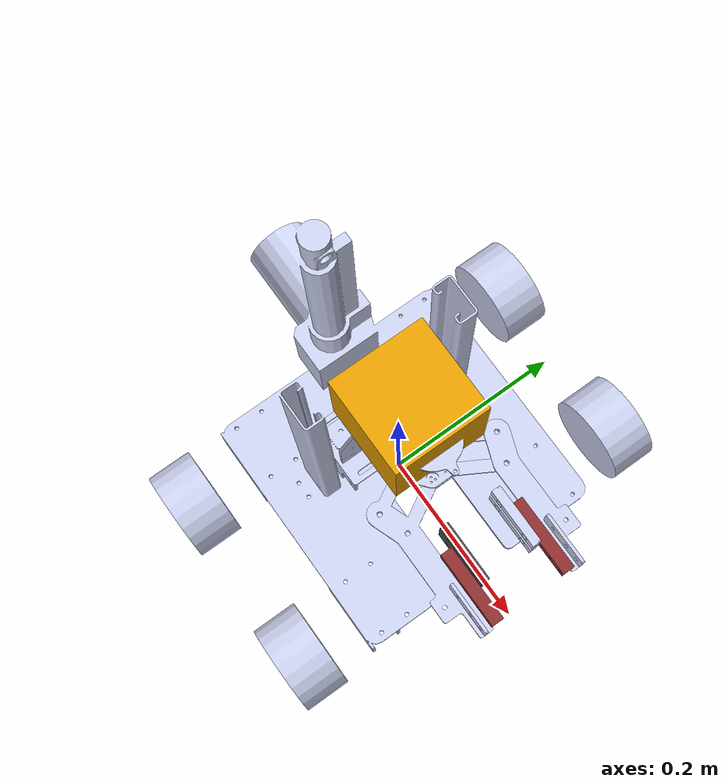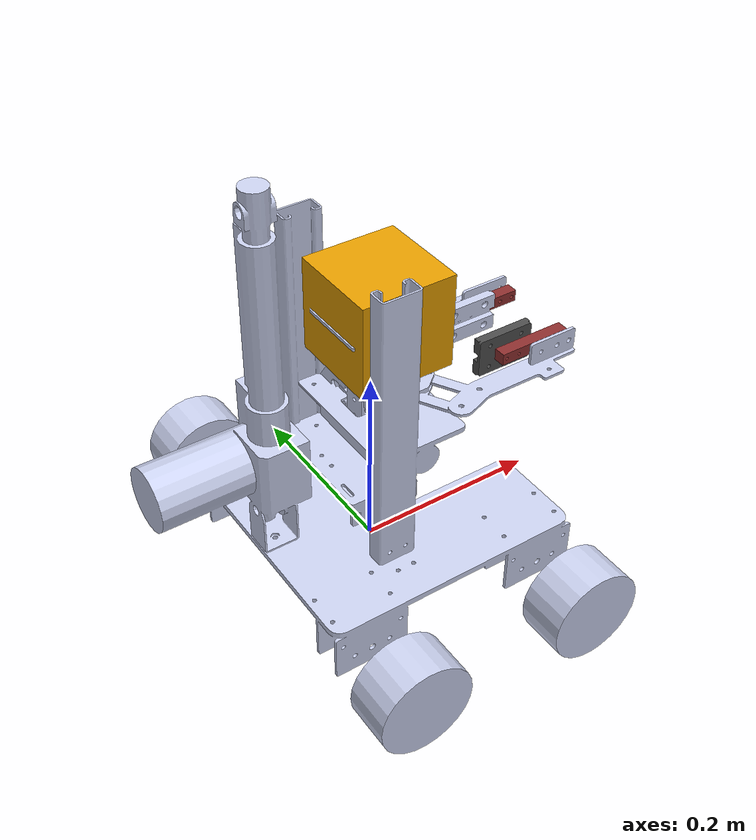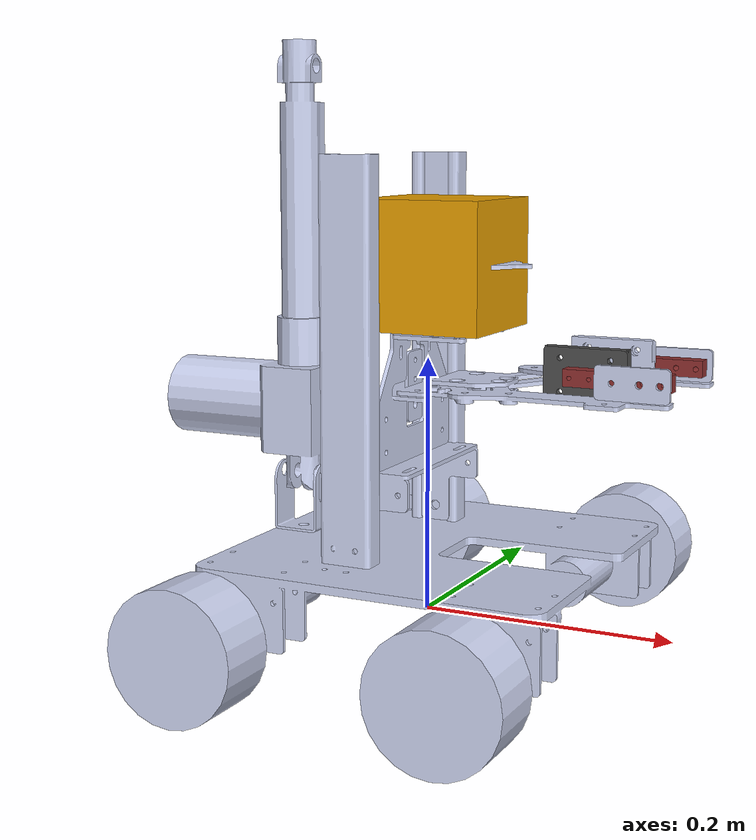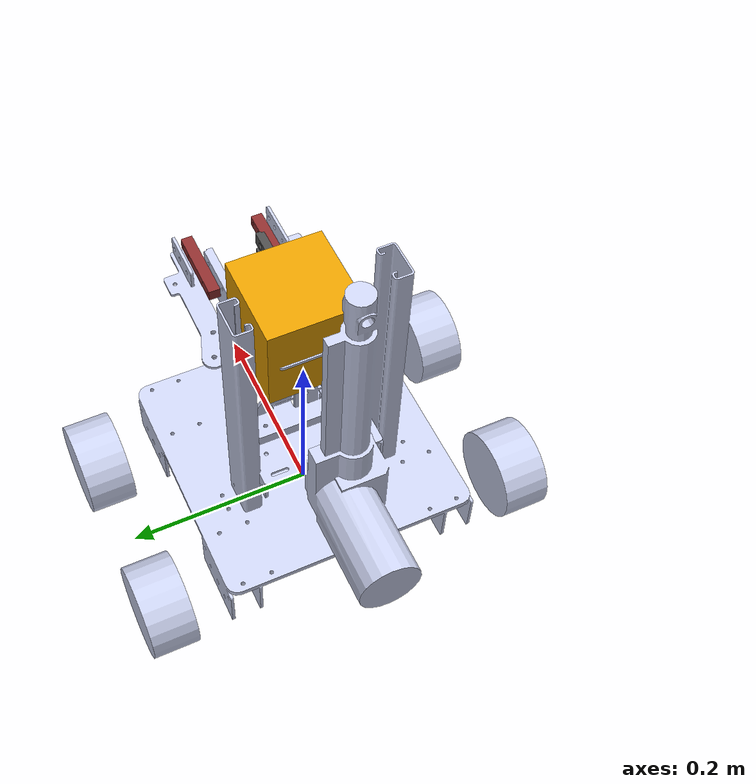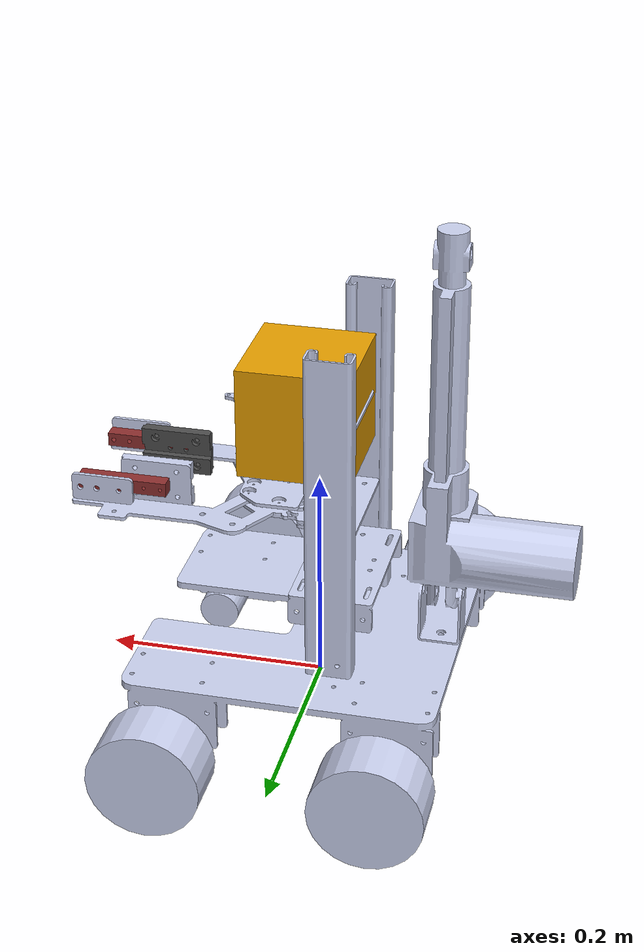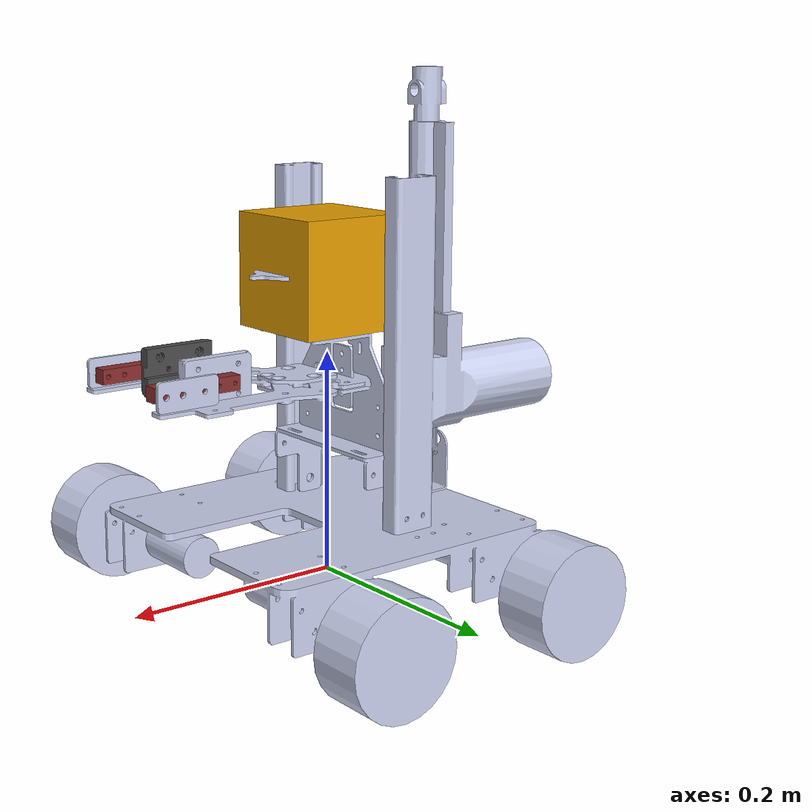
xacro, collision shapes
<?xml version="1.0"?>
<robot xmlns:xacro="http://ros.org/wiki/xacro" name="swole_7">

  <xacro:property name="PI" value="3.1415926535897931" />

  <!-- Wheels -->
  <xacro:property name="wheel_radius" value="0.05" />
  <xacro:property name="wheel_height" value="0.05" />
  <xacro:property name="wheel_mass" value="0.4" /> <!-- in kg-->

<xacro:include filename="$(find swole_7)/urdf/base/swole_base.urdf.xacro" />

	<!-- BASE FOOTPRINT -->

      <link name="base_footprint">
		  <visual>
			  <origin xyz="0 0 0.05" rpy="0 0 0" />
			  <geometry>
				 <box size="0.001 0.001 0.0001" />
			  </geometry>
        <material name="darkgrey">
         <color rgba="0.1 0.1 0.1 1"/>
       </material>
		  </visual>
		</link>

		<joint name="base_footprint_joint" type="fixed">
		  <origin xyz="0 0 ${wheel_radius}" rpy="0 0 0" />
      <!-- ${wheel_radius} property must be defined inside wheel description -->
		  <parent link="base_footprint"/>
		  <child link="base_link" />
		</joint>

    <link
    name="base_link">
    <inertial>
      <origin
        xyz="-0.0148176230048584 0.00401001080732938 0.0686503041268495"
        rpy="0 0 0" />
     <mass
        value="0.43823834058655" />
      <inertia
        ixx="0.00314976311839575"
        ixy="-9.54850998275818E-19"
        ixz="-8.87078769442381E-22"
        iyy="0.00277373372724309"
        iyz="-5.06082384233403E-22"
        izz="0.00592055170139079" />
    </inertial>
    <visual>
      <origin
        xyz="0 0 0"
        rpy="0 0 0" />
      <geometry>
        <mesh
          filename="package://swole_7/meshes/base_link.STL" />
      </geometry>
      <material
        name="">
        <color
          rgba="0.792156862745098 0.819607843137255 0.933333333333333 1" />
      </material>
    </visual>
    <collision>
      <origin
        xyz="0 0 0"
        rpy="0 0 0" />
      <geometry>
        <mesh
          filename="package://swole_7/meshes/base_link.STL" />
      </geometry>
    </collision>
  </link>
  <link
    name="front_right_wheel">
    <inertial>
      <origin
        xyz="1.4481E-11 3.6689E-05 5.3453E-11"
        rpy="0 0 0" />
      <mass
        value="0.4" />
      <inertia
        ixx="5.541E-05"
        ixy="-4.7628E-15"
        ixz="-4.7607E-14"
        iyy="6.7546E-05"
        iyz="-3.3652E-14"
        izz="5.541E-05" />
    </inertial>
    <visual>
      <origin
        xyz="0 0 0"
        rpy="0 0 0" />
      <geometry>
        <mesh
          filename="package://swole_7/meshes/omni_wheel_1.dae" scale="0.4 0.4 0.4"/>
      </geometry>
      <material
        name="">
        <color
          rgba="0.79216 0.81961 0.93333 1" />
      </material>
    </visual>
    <collision>
      <origin
        xyz="0 0 0"
        rpy="1.57 0 0" />
        <geometry>
					<cylinder length="0.05" radius="0.05" />
        </geometry>
    </collision>
  </link>
  <joint
    name="front_right_wheel_joint"
    type="continuous">
    <origin
      xyz="0.10879 -0.20416 -0.035575"
      rpy="0 0 0" />
    <parent
      link="base_link" />
    <child
      link="front_right_wheel" />
    <axis
      xyz="0 1 0" />
     <limit effort="100" velocity="100"/>
    <joint_properties damping="0.0" friction="0.0"/>
  </joint>
  <link
    name="front_left_wheel">
    <inertial>
      <origin
        xyz="1.7206E-11 -6.0979E-12 4.367E-11"
        rpy="0 0 0" />
      <mass
        value="0.4" />
      <inertia
        ixx="5.541E-05"
        ixy="-1.8289E-14"
        ixz="1.6534E-13"
        iyy="6.7546E-05"
        iyz="4.9936E-14"
        izz="5.541E-05" />
    </inertial>
    <visual>
      <origin
        xyz="0 0 0"
        rpy="0 0 0" />
      <geometry>
        <mesh
          filename="package://swole_7/meshes/omni_wheel_2.dae" scale="0.4 0.4 0.4"/>
      </geometry>
      <material
        name="">
        <color
          rgba="0.79216 0.81961 0.93333 1" />
      </material>
    </visual>
    <collision>
      <origin
        xyz="0 0 0"
        rpy="1.57 0 0" />
        <geometry>
					<cylinder length="0.05" radius="0.05" />
        </geometry>
    </collision>
  </link>
  <joint
    name="front_left_wheel_joint"
    type="continuous">
    <origin
      xyz="0.099888 0.20438 -0.035575"
      rpy="0 0 0" />
    <parent
      link="base_link" />
    <child
      link="front_left_wheel" />
    <axis
      xyz="0 1 0" />
    <limit effort="100" velocity="100"/>
    <joint_properties damping="0.0" friction="0.0"/>
  </joint>
  <link
    name="rear_left_wheel">
    <inertial>
      <origin
        xyz="-1.8869E-11 -7.9625E-12 -1.3747E-12"
        rpy="0 0 0" />
      <mass
        value="0.4" />
      <inertia
        ixx="5.541E-05"
        ixy="1.182E-14"
        ixz="-1.164E-13"
        iyy="6.7546E-05"
        iyz="2.6018E-14"
        izz="5.541E-05" />
    </inertial>
    <visual>
      <origin
        xyz="0 0 0"
        rpy="0 0 0" />
      <geometry>
        <mesh
          filename="package://swole_7/meshes/omni_wheel_2.dae" scale="0.4 0.4 0.4"/>
      </geometry>
      <material
        name="">
        <color
          rgba="0.79216 0.81961 0.93333 1" />
      </material>
    </visual>
    <collision>
      <origin
        xyz="0 0 0"
        rpy="1.57 0 0" />
        <geometry>
					<cylinder length="0.05" radius="0.05" />
        </geometry>
    </collision>
  </link>
  <joint
    name="rear_left_wheel_joint"
    type="continuous">
    <origin
      xyz="-0.091212 0.20438 -0.035575"
      rpy="0 0 0" />
    <parent
      link="base_link" />
    <child
      link="rear_left_wheel" />
    <axis
      xyz="0 1 0" />
  </joint>
  <link
    name="rear_right_wheel">
    <inertial>
      <origin
        xyz="-1.4481E-11 3.6689E-05 -5.3453E-11"
        rpy="0 0 0" />
      <mass
        value="0.4" />
      <inertia
        ixx="5.541E-05"
        ixy="4.7618E-15"
        ixz="-4.7607E-14"
        iyy="6.7546E-05"
        iyz="3.3654E-14"
        izz="5.541E-05" />
    </inertial>
    <visual>
      <origin
        xyz="0 0 0"
        rpy="0 0 0" />
      <geometry>
        <mesh
          filename="package://swole_7/meshes/omni_wheel_1.dae" scale="0.4 0.4 0.4"/>
      </geometry>
      <material
        name="">
        <color
          rgba="0.79216 0.81961 0.93333 1" />
      </material>
    </visual>
    <collision>
      <origin
        xyz="0 0 0"
        rpy="1.57 0 0" />
        <geometry>
					<cylinder length="0.05" radius="0.05" />
        </geometry>
    </collision>
  </link>
  <joint
    name="rear_right_wheel_joint"
    type="continuous">
    <origin
      xyz="-0.090543 -0.20416 -0.035575"
      rpy="0 0 0" />
    <parent
      link="base_link" />
    <child
      link="rear_right_wheel" />
    <axis
      xyz="0 1 0" />
  </joint>
  <link
    name="gripper_lifter">
    <inertial>
      <origin
        xyz="-0.0249741085115004 0.00401001080732938 0.0686503041268495"
        rpy="0 0 0" />
      <mass
        value="0.0172" />
      <inertia
        ixx="0.00021296"
        ixy="-1.3863E-08"
        ixz="-1.1287E-14"
        iyy="0.00017198"
        iyz="-1.0274E-15"
        izz="0.00020319" />
    </inertial>
    <visual>
      <origin
        xyz="0 0 0"
        rpy="0 0 0" />
      <geometry>
        <mesh
          filename="package://swole_7/meshes/gripper_lifter.STL" />
      </geometry>
      <material
        name="">
        <color
          rgba="0.79216 0.81961 0.93333 1" />
      </material>
    </visual>
    <collision>
      <origin
        xyz="0 0 0"
        rpy="0 0 0" />
      <geometry>
        <mesh
          filename="package://swole_7/meshes/gripper_lifter.STL" />
      </geometry>
    </collision>
  </link>
  <joint
    name="gripper_lifter_joint"
    type="prismatic">
    <origin
      xyz="-0.0249741085115004 0.00401001080732938 0.0686503041268495"
      rpy="0 0 0" />
    <parent
      link="base_link" />
    <child
      link="gripper_lifter" />
    <axis
      xyz="0 0 1" />
      <!-- stroke length 0.1524 m -->
    <limit velocity="1.0" effort="10.0" lower="0" upper="${0.0686503041268495 + 0.2524}"/>
    <dynamics friction="1" damping="1" />
  </joint>
  <link
    name="lidar_plate">
    <inertial>
      <origin
        xyz="0 -2.7756E-17 -5.5511E-17"
        rpy="0 0 0" />
      <mass
        value="0.00000019609" />
      <inertia
        ixx="6.9293E-06"
        ixy="-1.434E-21"
        ixz="-7.3447E-22"
        iyy="2.3202E-05"
        iyz="3.4914E-23"
        izz="3.0098E-05" />
    </inertial>
    <visual>
      <origin
        xyz="0 0 0"
        rpy="0 0 0" />
      <geometry>
        <mesh
          filename="package://swole_7/meshes/lidar_plate.STL" />
      </geometry>
      <material
        name="">
        <color
          rgba="0.79216 0.81961 0.93333 1" />
      </material>
    </visual>
    <collision>
      <origin
        xyz="0 0 0"
        rpy="0 0 0" />
      <geometry>
        <mesh
          filename="package://swole_7/meshes/lidar_plate.STL" />
      </geometry>
    </collision>
  </link>
  <joint
    name="lidar_plate_joint"
    type="fixed">
    <origin
      xyz="0.035612 0 0.15559"
      rpy="0 0 0" />
    <parent
      link="gripper_lifter" />
    <child
      link="lidar_plate" />
    <axis
      xyz="0 0 1" />
  </joint>

  <!-- Lidar -->
  <joint name="lidar_joint" type="fixed">
    <axis xyz="0 1 0" />
    <origin xyz="0 0 0" rpy="0 0 0"/>
    <parent link="lidar_plate"/>
    <child link="lidar"/>
  </joint>

  <!-- Hokuyo Laser -->
  <link name="lidar">
    <collision>
      <origin xyz="0 0 0" rpy="0 0 0"/>
      <geometry>
    <box size="0.1 0.1 0.1"/>
      </geometry>
    </collision>
    <visual>
      <origin xyz="0.01 0 0.03" rpy="0 0 0"/>
        <geometry>
					<cylinder length="0.04" radius="0.06" />
        </geometry>
    </visual>
    <inertial>
      <mass value="1e-5" />
      <origin xyz="0 0 0" rpy="0 0 0"/>
      <inertia ixx="1e-6" ixy="0" ixz="0" iyy="1e-6" iyz="0" izz="1e-6" />
    </inertial>
  </link>
  <link
    name="finger_right">
    <inertial>
      <origin
        xyz="-5.5511E-17 1.3878E-17 5.5511E-17"
        rpy="0 0 0" />
      <mass
        value="0.0041334" />
      <inertia
        ixx="2.2294E-07"
        ixy="-1.2445E-24"
        ixz="1.0627E-22"
        iyy="1.2703E-06"
        iyz="-2.8075E-24"
        izz="1.0543E-06" />
    </inertial>
    <visual>
      <origin
        xyz="0 0 0"
        rpy="0 0 0" />
      <geometry>
        <mesh
          filename="package://swole_7/meshes/finger_right.STL" />
      </geometry>
      <material
        name="">
        <color
          rgba="0.79216 0.81961 0.93333 1" />
      </material>
    </visual>
    <collision>
      <origin
        xyz="0 0 0"
        rpy="0 0 0" />
      <geometry>
        <mesh
          filename="package://swole_7/meshes/finger_right.STL" />
      </geometry>
    </collision>
  </link>
  <joint
    name="finger_right_joint"
    type="prismatic">
    <origin
      xyz="0.2055 -0.054841 0.080876"
      rpy="0 0 0" />
    <parent
      link="gripper_lifter" />
    <child
      link="finger_right" />
    <axis
      xyz="0 0 1" />
    <limit
      lower="0"
      upper="0"
      effort="0"
      velocity="0" />
  </joint>
  <link
    name="load_cell_right">
    <inertial>
      <origin
        xyz="0 -2.7756E-17 -2.7756E-17"
        rpy="0 0 0" />
      <mass
        value="0.012334" />
      <inertia
        ixx="3.3867E-07"
        ixy="-4.5654E-20"
        ixz="-1.326E-21"
        iyy="6.5905E-06"
        iyz="3.1041E-23"
        izz="6.5834E-06" />
    </inertial>
    <visual>
      <origin
        xyz="0 0 0"
        rpy="0 0 0" />
      <geometry>
        <mesh
          filename="package://swole_7/meshes/load_cell_right.STL" />
      </geometry>
      <material
        name="">
        <color
          rgba="0.54902 0.18039 0.18039 1" />
      </material>
    </visual>
    <collision>
      <origin
        xyz="0 0 0"
        rpy="0 0 0" />
      <geometry>
        <mesh
          filename="package://swole_7/meshes/load_cell_right.STL" />
      </geometry>
    </collision>
  </link>
  <joint
    name="load_cell_right_joint"
    type="fixed">
    <origin
      xyz="-0.01482 0.014288 0"
      rpy="0 0 0" />
    <parent
      link="finger_right" />
    <child
      link="load_cell_right" />
    <axis
      xyz="0 0 1" />
  </joint>
  <link
    name="contact_right">
    <inertial>
      <origin
        xyz="-1.1102E-16 0.0028274 -2.7756E-17"
        rpy="0 0 0" />
      <mass
        value="0.019736" />
      <inertia
        ixx="1.407E-06"
        ixy="-4.8601E-20"
        ixz="2.4258E-22"
        iyy="7.9682E-06"
        iyz="-8.9801E-24"
        izz="6.6549E-06" />
    </inertial>
    <visual>
      <origin
        xyz="0 0 0"
        rpy="0 0 0" />
      <geometry>
        <mesh
          filename="package://swole_7/meshes/contact_right.STL" />
      </geometry>
      <material
        name="">
        <color
          rgba="0.29804 0.29804 0.29804 1" />
      </material>
    </visual>
    <collision>
      <origin
        xyz="0 0 0"
        rpy="0 0 0" />
      <geometry>
        <mesh
          filename="package://swole_7/meshes/contact_right.STL" />
      </geometry>
    </collision>
  </link>
  <joint
    name="contact_right_joint"
    type="fixed">
    <origin
      xyz="-0.04202 0.022225 0"
      rpy="0 0 0" />
    <parent
      link="finger_right" />
    <child
      link="contact_right" />
    <axis
      xyz="0 0 1" />
  </joint>
  <link
    name="finger_left">
    <inertial>
      <origin
        xyz="0 -2.7756E-17 2.7756E-17"
        rpy="0 0 0" />
      <mass
        value="0.0041334" />
      <inertia
        ixx="2.2294E-07"
        ixy="-1.0833E-24"
        ixz="8.7052E-23"
        iyy="1.2703E-06"
        iyz="-1.5725E-24"
        izz="1.0543E-06" />
    </inertial>
    <visual>
      <origin
        xyz="0 0 0"
        rpy="0 0 0" />
      <geometry>
        <mesh
          filename="package://swole_7/meshes/finger_left.STL" />
      </geometry>
      <material
        name="">
        <color
          rgba="0.79216 0.81961 0.93333 1" />
      </material>
    </visual>
    <collision>
      <origin
        xyz="0 0 0"
        rpy="0 0 0" />
      <geometry>
        <mesh
          filename="package://swole_7/meshes/finger_left.STL" />
      </geometry>
    </collision>
  </link>
  <joint
    name="finger_left_joint"
    type="prismatic">
    <origin
      xyz="0.20577 0.054684 0.080876"
      rpy="0 0 0" />
    <parent
      link="gripper_lifter" />
    <child
      link="finger_left" />
    <axis
      xyz="0 0 1" />
    <limit
      lower="0"
      upper="0"
      effort="0"
      velocity="0" />
  </joint>
  <link
    name="load_cell_left">
    <inertial>
      <origin
        xyz="0 -2.7756E-17 0"
        rpy="0 0 0" />
      <mass
        value="0.012334" />
      <inertia
        ixx="3.3867E-07"
        ixy="-9.5607E-22"
        ixz="-1.1726E-21"
        iyy="6.5905E-06"
        iyz="-6.4043E-24"
        izz="6.5834E-06" />
    </inertial>
    <visual>
      <origin
        xyz="0 0 0"
        rpy="0 0 0" />
      <geometry>
        <mesh
          filename="package://swole_7/meshes/load_cell_left.STL" />
      </geometry>
      <material
        name="">
        <color
          rgba="0.54902 0.18039 0.18039 1" />
      </material>
    </visual>
    <collision>
      <origin
        xyz="0 0 0"
        rpy="0 0 0" />
      <geometry>
        <mesh
          filename="package://swole_7/meshes/load_cell_left.STL" />
      </geometry>
    </collision>
  </link>
  <joint
    name="load_cell_left_joint"
    type="prismatic">
    <origin
      xyz="-0.01482 -0.014288 0"
      rpy="0 0 0" />
    <parent
      link="finger_left" />
    <child
      link="load_cell_left" />
    <axis
      xyz="0 0 1" />
    <limit
      lower="0"
      upper="0"
      effort="0"
      velocity="0" />
  </joint>
  <link
    name="contact_left">
    <inertial>
      <origin
        xyz="5.5511E-17 -0.0028274 2.7756E-17"
        rpy="0 0 0" />
      <mass
        value="0.019736" />
      <inertia
        ixx="1.407E-06"
        ixy="-2.1715E-21"
        ixz="-2.6305E-21"
        iyy="7.9682E-06"
        iyz="-1.8064E-23"
        izz="6.6549E-06" />
    </inertial>
    <visual>
      <origin
        xyz="0 0 0"
        rpy="0 0 0" />
      <geometry>
        <mesh
          filename="package://swole_7/meshes/contact_left.STL" />
      </geometry>
      <material
        name="">
        <color
          rgba="0.79216 0.81961 0.93333 1" />
      </material>
    </visual>
    <collision>
      <origin
        xyz="0 0 0"
        rpy="0 0 0" />
      <geometry>
        <mesh
          filename="package://swole_7/meshes/contact_left.STL" />
      </geometry>
    </collision>
  </link>
  <joint
    name="contact_left_joint"
    type="prismatic">
    <origin
      xyz="-0.04202 -0.022225 0"
      rpy="0 0 0" />
    <parent
      link="finger_left" />
    <child
      link="contact_left" />
    <axis
      xyz="0 0 1" />
    <limit
      lower="0"
      upper="0"
      effort="0"
      velocity="0" />
  </joint>

       <!-- Transmission is important to link the joints and the controller (see swole_xl_control/config/swole_xl_control.yaml)-->
    <transmission name="rear_left_wheel_joint_trans">
      <type>transmission_interface/SimpleTransmission</type>
      <joint name="rear_left_wheel_joint" >
        <hardwareInterface>hardware_interface/VelocityJointInterface</hardwareInterface>
      </joint>
      <actuator name="rear_left_wheel_joint_motor">
         <mechanicalReduction>1</mechanicalReduction>
      </actuator>
    </transmission>

    <gazebo reference="rear_left_wheel">
		<mu1 value="1.0"/>
		<mu2 value="1.0"/>
		<kp value="10000000.0" />
		<kd value="1.0" />
		<fdir1 value="1 0 0"/>
        <turnGravityOff>false</turnGravityOff>
    </gazebo>

       <!-- Transmission is important to link the joints and the controller (see swole_xl_control/config/swole_xl_control.yaml)-->
    <transmission name="front_right_wheel_joint_trans">
      <type>transmission_interface/SimpleTransmission</type>
      <joint name="front_right_wheel_joint" >
        <hardwareInterface>hardware_interface/VelocityJointInterface</hardwareInterface>
      </joint>
      <actuator name="front_right_wheel_joint_motor">
         <mechanicalReduction>1</mechanicalReduction>
      </actuator>
    </transmission>

    <gazebo reference="front_right_wheel">
		<mu1 value="1.0"/>
		<mu2 value="1.0"/>
		<kp value="10000000.0" />
		<kd value="1.0" />
		<fdir1 value="1 0 0"/>
        <turnGravityOff>false</turnGravityOff>
    </gazebo>

       <!-- Transmission is important to link the joints and the controller (see swole_xl_control/config/swole_xl_control.yaml)-->
    <transmission name="front_left_wheel_joint_trans">
      <type>transmission_interface/SimpleTransmission</type>
      <joint name="front_left_wheel_joint" >
        <hardwareInterface>hardware_interface/VelocityJointInterface</hardwareInterface>
      </joint>
      <actuator name="front_left_wheel_joint_motor">
         <mechanicalReduction>1</mechanicalReduction>
      </actuator>
    </transmission>

    <gazebo reference="front_left_wheel">
		<mu1 value="1.0"/>
		<mu2 value="1.0"/>
		<kp value="10000000.0" />
		<kd value="1.0" />
		<fdir1 value="1 0 0"/>
        <turnGravityOff>false</turnGravityOff>
    </gazebo>

    <!-- Gripper -->
    <transmission name="gripper_lifter_tr">
        <type>transmission_interface/SimpleTransmission</type>
        <joint name="gripper_lifter_joint">
           <hardwareInterface>hardware_interface/EffortJointInterface</hardwareInterface>
        </joint>
        <actuator name="motor_gripper_lifter_joint">
           <hardwareInterface>hardware_interface/EffortJointInterface</hardwareInterface>
          <mechanicalReduction>1</mechanicalReduction>
        </actuator>
      </transmission>

          <!-- hokuyo -->
  <gazebo reference="lidar">
    <sensor type="gpu_ray" name="head_hokuyo_sensor">
      <pose>0 0 0 0 0 0</pose>
      <visualize>true</visualize>
      <update_rate>6</update_rate>
      <ray>
        <scan>
          <horizontal>
            <samples>720</samples>
            <resolution>1</resolution>
            <min_angle>-3.14</min_angle>
            <max_angle>3.14</max_angle>
          </horizontal>
        </scan>
        <range>
          <min>0.15</min>
          <max>8.0</max>
          <resolution>0.01</resolution>
        </range>
        <noise>
          <type>gaussian</type>
          <mean>0.0</mean>
          <stddev>0.01</stddev>
        </noise>
      </ray>
      <plugin name="gazebo_ros_head_hokuyo_controller" filename="libgazebo_ros_gpu_laser.so">
        <topicName>/swole/laser/scan</topicName>
        <frameName>lidar</frameName>
      </plugin>
    </sensor>
  </gazebo>

  <gazebo>
    <plugin name="imu_plugin" filename="libgazebo_ros_imu.so">
      <alwaysOn>true</alwaysOn>
      <bodyName>base_footprint</bodyName>
      <topicName>imu</topicName>
      <serviceName>imu_service</serviceName>
      <gaussianNoise>0.0</gaussianNoise>
      <updateRate>20.0</updateRate>
    </plugin>
  </gazebo>

  <!-- Ros control plugin -->
  <gazebo>
  <plugin name="gazebo_ros_control" filename="libgazebo_ros_control.so">
    <robotNamespace>/swole_7</robotNamespace>
  </plugin>
</gazebo>

</robot>

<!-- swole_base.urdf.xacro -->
<robot name="swole_7" xmlns:xacro="http://www.ros.org/wiki/xacro">

  <xacro:property name="PI" value="3.1415926535897931" />

  <!-- Wheels -->
  <xacro:property name="wheel_radius" value="0.05" />
  <xacro:property name="wheel_height" value="0.05" />
  <xacro:property name="wheel_mass" value="0.4" /> <!-- in kg-->

  <xacro:macro name="swole_base">

      <xacro:include filename="$(find swole_description)/urdf/base/swole_base.gazebo.xacro" />
	  <!-- Robot mechanical and motor parameters -->
	  <xacro:property name="PI" value="3.1415926535897931"/>
	  <xacro:property name="wheel_width" value="0.05" />

	<!-- BASE FOOTPRINT -->

      <link name="base_footprint">
		  <visual>
			  <origin xyz="0 0 0.05" rpy="0 0 0" />
			  <geometry>
				 <box size="0.001 0.001 0.0001" />
			  </geometry>
        <material name="darkgrey">
         <color rgba="0.1 0.1 0.1 1"/>
       </material>
		  </visual>
		</link>

    <link
    name="base_link">
    <inertial>
      <origin
        xyz="-0.0148176230048584 0.00401001080732938 0.0686503041268495"
        rpy="0 0 0" />
     <mass
        value="0.43823834058655" />
      <inertia
        ixx="0.00314976311839575"
        ixy="-9.54850998275818E-19"
        ixz="-8.87078769442381E-22"
        iyy="0.00277373372724309"
        iyz="-5.06082384233403E-22"
        izz="0.00592055170139079" />
    </inertial>
    <visual>
      <origin
        xyz="0 0 0"
        rpy="0 0 0" />
      <geometry>
        <mesh
          filename="package://swole_7/meshes/base_link.STL" />
      </geometry>
      <material
        name="">
        <color
          rgba="0.792156862745098 0.819607843137255 0.933333333333333 1" />
      </material>
    </visual>
    <collision>
      <origin
        xyz="0 0 0"
        rpy="0 0 0" />
      <geometry>
        <mesh
          filename="package://swole_7/meshes/base_link.STL" />
      </geometry>
    </collision>
  </link>
  <link
    name="front_right_wheel">
    <inertial>
      <origin
        xyz="1.4481E-11 3.6689E-05 5.3453E-11"
        rpy="${PI/2}0 0" />
      <mass
        value="0.4" />
      <xacro:cylinder_inertia  m="${wheel_mass}" r="${wheel_radius}" h="${wheel_height}" />
    </inertial>
    <visual>
      <origin
        xyz="0 0 0"
        rpy="0 0 0" />
      <geometry>
        <mesh
          filename="package://swole_7/meshes/omni_wheel_1.dae" scale="1 1 1"/>
      </geometry>
      <material
        name="">
        <color
          rgba="0.79216 0.81961 0.93333 1" />
      </material>
    </visual>
    <collision>
      <origin
        xyz="0 0 0"
        rpy="1.57 0 0" />
          <geometry>
            <cylinder length="0.05" radius="0.05" />
          </geometry>
    </collision>
  </link>
  <joint
    name="front_right_wheel_joint"
    type="continuous">
    <origin
      xyz="0.10879 -0.20416 -0.035575"
      rpy="0 0 0" />
    <parent
      link="base_link" />
    <child
      link="front_right_wheel" />
    <axis
      xyz="0 1 0" />
  </joint>
  <link
    name="front_left_wheel">
    <inertial>
      <origin
        xyz="1.7206E-11 -6.0979E-12 4.367E-11"
        rpy="0 1.57 0" />
      <mass
        value="0.4" />
      <inertia
        ixx="5.541E-05"
        ixy="-1.8289E-14"
        ixz="1.6534E-13"
        iyy="6.7546E-05"
        iyz="4.9936E-14"
        izz="5.541E-05" />
    </inertial>
    <visual>
      <origin
        xyz="0 0 0"
        rpy="0 0 0" />
      <geometry>
        <mesh
          filename="package://swole_7/meshes/omni_wheel_2.dae" scale="0.4 0.4 0.4"/>
      </geometry>
      <material
        name="">
        <color
          rgba="0.79216 0.81961 0.93333 1" />
      </material>
    </visual>
    <collision>
      <origin
        xyz="0 0 0"
        rpy="1.57 0 0" />
        <geometry>
					<cylinder length="0.05" radius="0.05" />
        </geometry>
    </collision>
  </link>
  <joint
    name="front_left_wheel_joint"
    type="continuous">
    <origin
      xyz="0.099888 0.20438 -0.035575"
      rpy="0 0 0" />
    <parent
      link="base_link" />
    <child
      link="front_left_wheel" />
    <axis
      xyz="0 1 0" />
    <limit effort="100" velocity="100"/>
    <joint_properties damping="0.0" friction="0.0"/>
  </joint>
  <link
    name="rear_left_wheel">
    <inertial>
      <origin
        xyz="-1.8869E-11 -7.9625E-12 -1.3747E-12"
        rpy="0 0 0" />
      <mass
        value="0.4" />
      <inertia
        ixx="5.541E-05"
        ixy="1.182E-14"
        ixz="-1.164E-13"
        iyy="6.7546E-05"
        iyz="2.6018E-14"
        izz="5.541E-05" />
    </inertial>
    <visual>
      <origin
        xyz="0 0 0"
        rpy="0 0 0" />
      <geometry>
        <mesh
          filename="package://swole_7/meshes/omni_wheel_2.dae" scale="0.4 0.4 0.4"/>
      </geometry>
      <material
        name="">
        <color
          rgba="0.79216 0.81961 0.93333 1" />
      </material>
    </visual>
    <collision>
      <origin
        xyz="0 0 0"
        rpy="1.57 0 0" />
        <geometry>
					<cylinder length="0.05" radius="0.05" />
        </geometry>
    </collision>
  </link>
  <joint
    name="rear_left_wheel_joint"
    type="continuous">
    <origin
      xyz="-0.091212 0.20438 -0.035575"
      rpy="0 0 0" />
    <parent
      link="base_link" />
    <child
      link="rear_left_wheel" />
    <axis
      xyz="0 1 0" />
  </joint>
  <link
    name="rear_right_wheel">
    <inertial>
      <origin
        xyz="-1.4481E-11 3.6689E-05 -5.3453E-11"
        rpy="0 0 0" />
      <mass
        value="0.4" />
      <inertia
        ixx="5.541E-05"
        ixy="4.7618E-15"
        ixz="-4.7607E-14"
        iyy="6.7546E-05"
        iyz="3.3654E-14"
        izz="5.541E-05" />
    </inertial>
    <visual>
      <origin
        xyz="0 0 0"
        rpy="0 0 0" />
      <geometry>
        <mesh
          filename="package://swole_7/meshes/omni_wheel_1.dae" scale="0.4 0.4 0.4"/>
      </geometry>
      <material
        name="">
        <color
          rgba="0.79216 0.81961 0.93333 1" />
      </material>
    </visual>
    <collision>
      <origin
        xyz="0 0 0"
        rpy="1.57 0 0" />
        <geometry>
					<cylinder length="0.05" radius="0.05" />
        </geometry>
    </collision>
  </link>
  <joint
    name="rear_right_wheel_joint"
    type="continuous">
    <origin
      xyz="-0.090543 -0.20416 -0.035575"
      rpy="0 0 0" />
    <parent
      link="base_link" />
    <child
      link="rear_right_wheel" />
    <axis
      xyz="0 1 0" />
  </joint>
  <link
    name="gripper_lifter">
    <inertial>
      <origin
        xyz="-0.0249741085115004 0.00401001080732938 0.0686503041268495"
        rpy="0 0 0" />
      <mass
        value="0.0172" />
      <inertia
        ixx="0.00021296"
        ixy="-1.3863E-08"
        ixz="-1.1287E-14"
        iyy="0.00017198"
        iyz="-1.0274E-15"
        izz="0.00020319" />
    </inertial>
    <visual>
      <origin
        xyz="0 0 0"
        rpy="0 0 0" />
      <geometry>
        <mesh
          filename="package://swole_7/meshes/gripper_lifter.STL" />
      </geometry>
      <material
        name="">
        <color
          rgba="0.79216 0.81961 0.93333 1" />
      </material>
    </visual>
    <collision>
      <origin
        xyz="0 0 0"
        rpy="0 0 0" />
      <geometry>
        <mesh
          filename="package://swole_7/meshes/gripper_lifter.STL" />
      </geometry>
    </collision>
  </link>
  <joint
    name="gripper_lifter_joint"
    type="prismatic">
    <origin
      xyz="-0.0249741085115004 0.00401001080732938 0.0686503041268495"
      rpy="0 0 0" />
    <parent
      link="base_link" />
    <child
      link="gripper_lifter" />
    <axis
      xyz="0 0 1" />
    <limit
      lower="0"
      upper="0"
      effort="0"
      velocity="0" />
  </joint>
  <link
    name="lidar_plate">
    <inertial>
      <origin
        xyz="0 -2.7756E-17 -5.5511E-17"
        rpy="0 0 0" />
      <mass
        value="0.00000019609" />
      <inertia
        ixx="6.9293E-06"
        ixy="-1.434E-21"
        ixz="-7.3447E-22"
        iyy="2.3202E-05"
        iyz="3.4914E-23"
        izz="3.0098E-05" />
    </inertial>
    <visual>
      <origin
        xyz="0 0 0"
        rpy="0 0 0" />
      <geometry>
        <mesh
          filename="package://swole_7/meshes/lidar_plate.STL" />
      </geometry>
      <material
        name="">
        <color
          rgba="0.79216 0.81961 0.93333 1" />
      </material>
    </visual>
    <collision>
      <origin
        xyz="0 0 0"
        rpy="0 0 0" />
      <geometry>
        <mesh
          filename="package://swole_7/meshes/lidar_plate.STL" />
      </geometry>
    </collision>
  </link>
  <joint
    name="lidar_plate_joint"
    type="fixed">
    <origin
      xyz="0.035612 0 0.15559"
      rpy="0 0 0" />
    <parent
      link="gripper_lifter" />
    <child
      link="lidar_plate" />
    <axis
      xyz="0 0 1" />
  </joint>
  <link
    name="finger_right">
    <inertial>
      <origin
        xyz="-5.5511E-17 1.3878E-17 5.5511E-17"
        rpy="0 0 0" />
      <mass
        value="0.0041334" />
      <inertia
        ixx="2.2294E-07"
        ixy="-1.2445E-24"
        ixz="1.0627E-22"
        iyy="1.2703E-06"
        iyz="-2.8075E-24"
        izz="1.0543E-06" />
    </inertial>
    <visual>
      <origin
        xyz="0 0 0"
        rpy="0 0 0" />
      <geometry>
        <mesh
          filename="package://swole_7/meshes/finger_right.STL" />
      </geometry>
      <material
        name="">
        <color
          rgba="0.79216 0.81961 0.93333 1" />
      </material>
    </visual>
    <collision>
      <origin
        xyz="0 0 0"
        rpy="0 0 0" />
      <geometry>
        <mesh
          filename="package://swole_7/meshes/finger_right.STL" />
      </geometry>
    </collision>
  </link>
  <joint
    name="finger_right_joint"
    type="prismatic">
    <origin
      xyz="0.2055 -0.054841 0.080876"
      rpy="0 0 0" />
    <parent
      link="gripper_lifter" />
    <child
      link="finger_right" />
    <axis
      xyz="0 0 1" />
    <limit
      lower="0"
      upper="0"
      effort="0"
      velocity="0" />
  </joint>
  <link
    name="load_cell_right">
    <inertial>
      <origin
        xyz="0 -2.7756E-17 -2.7756E-17"
        rpy="0 0 0" />
      <mass
        value="0.012334" />
      <inertia
        ixx="3.3867E-07"
        ixy="-4.5654E-20"
        ixz="-1.326E-21"
        iyy="6.5905E-06"
        iyz="3.1041E-23"
        izz="6.5834E-06" />
    </inertial>
    <visual>
      <origin
        xyz="0 0 0"
        rpy="0 0 0" />
      <geometry>
        <mesh
          filename="package://swole_7/meshes/load_cell_right.STL" />
      </geometry>
      <material
        name="">
        <color
          rgba="0.54902 0.18039 0.18039 1" />
      </material>
    </visual>
    <collision>
      <origin
        xyz="0 0 0"
        rpy="0 0 0" />
      <geometry>
        <mesh
          filename="package://swole_7/meshes/load_cell_right.STL" />
      </geometry>
    </collision>
  </link>
  <joint
    name="load_cell_right_joint"
    type="fixed">
    <origin
      xyz="-0.01482 0.014288 0"
      rpy="0 0 0" />
    <parent
      link="finger_right" />
    <child
      link="load_cell_right" />
    <axis
      xyz="0 0 1" />
  </joint>
  <link
    name="contact_right">
    <inertial>
      <origin
        xyz="-1.1102E-16 0.0028274 -2.7756E-17"
        rpy="0 0 0" />
      <mass
        value="0.019736" />
      <inertia
        ixx="1.407E-06"
        ixy="-4.8601E-20"
        ixz="2.4258E-22"
        iyy="7.9682E-06"
        iyz="-8.9801E-24"
        izz="6.6549E-06" />
    </inertial>
    <visual>
      <origin
        xyz="0 0 0"
        rpy="0 0 0" />
      <geometry>
        <mesh
          filename="package://swole_7/meshes/contact_right.STL" />
      </geometry>
      <material
        name="">
        <color
          rgba="0.29804 0.29804 0.29804 1" />
      </material>
    </visual>
    <collision>
      <origin
        xyz="0 0 0"
        rpy="0 0 0" />
      <geometry>
        <mesh
          filename="package://swole_7/meshes/contact_right.STL" />
      </geometry>
    </collision>
  </link>
  <joint
    name="contact_right_joint"
    type="fixed">
    <origin
      xyz="-0.04202 0.022225 0"
      rpy="0 0 0" />
    <parent
      link="finger_right" />
    <child
      link="contact_right" />
    <axis
      xyz="0 0 1" />
  </joint>
  <link
    name="finger_left">
    <inertial>
      <origin
        xyz="0 -2.7756E-17 2.7756E-17"
        rpy="0 0 0" />
      <mass
        value="0.0041334" />
      <inertia
        ixx="2.2294E-07"
        ixy="-1.0833E-24"
        ixz="8.7052E-23"
        iyy="1.2703E-06"
        iyz="-1.5725E-24"
        izz="1.0543E-06" />
    </inertial>
    <visual>
      <origin
        xyz="0 0 0"
        rpy="0 0 0" />
      <geometry>
        <mesh
          filename="package://swole_7/meshes/finger_left.STL" />
      </geometry>
      <material
        name="">
        <color
          rgba="0.79216 0.81961 0.93333 1" />
      </material>
    </visual>
    <collision>
      <origin
        xyz="0 0 0"
        rpy="0 0 0" />
      <geometry>
        <mesh
          filename="package://swole_7/meshes/finger_left.STL" />
      </geometry>
    </collision>
  </link>
  <joint
    name="finger_left_joint"
    type="prismatic">
    <origin
      xyz="0.20577 0.054684 0.080876"
      rpy="0 0 0" />
    <parent
      link="gripper_lifter" />
    <child
      link="finger_left" />
    <axis
      xyz="0 0 1" />
    <limit
      lower="0"
      upper="0"
      effort="0"
      velocity="0" />
  </joint>
  <link
    name="load_cell_left">
    <inertial>
      <origin
        xyz="0 -2.7756E-17 0"
        rpy="0 0 0" />
      <mass
        value="0.012334" />
      <inertia
        ixx="3.3867E-07"
        ixy="-9.5607E-22"
        ixz="-1.1726E-21"
        iyy="6.5905E-06"
        iyz="-6.4043E-24"
        izz="6.5834E-06" />
    </inertial>
    <visual>
      <origin
        xyz="0 0 0"
        rpy="0 0 0" />
      <geometry>
        <mesh
          filename="package://swole_7/meshes/load_cell_left.STL" />
      </geometry>
      <material
        name="">
        <color
          rgba="0.54902 0.18039 0.18039 1" />
      </material>
    </visual>
    <collision>
      <origin
        xyz="0 0 0"
        rpy="0 0 0" />
      <geometry>
        <mesh
          filename="package://swole_7/meshes/load_cell_left.STL" />
      </geometry>
    </collision>
  </link>
  <joint
    name="load_cell_left_joint"
    type="prismatic">
    <origin
      xyz="-0.01482 -0.014288 0"
      rpy="0 0 0" />
    <parent
      link="finger_left" />
    <child
      link="load_cell_left" />
    <axis
      xyz="0 0 1" />
    <limit
      lower="0"
      upper="0"
      effort="0"
      velocity="0" />
  </joint>
  <link
    name="contact_left">
    <inertial>
      <origin
        xyz="5.5511E-17 -0.0028274 2.7756E-17"
        rpy="0 0 0" />
      <mass
        value="0.019736" />
      <inertia
        ixx="1.407E-06"
        ixy="-2.1715E-21"
        ixz="-2.6305E-21"
        iyy="7.9682E-06"
        iyz="-1.8064E-23"
        izz="6.6549E-06" />
    </inertial>
    <visual>
      <origin
        xyz="0 0 0"
        rpy="0 0 0" />
      <geometry>
        <mesh
          filename="package://swole_7/meshes/contact_left.STL" />
      </geometry>
      <material
        name="">
        <color
          rgba="0.79216 0.81961 0.93333 1" />
      </material>
    </visual>
    <collision>
      <origin
        xyz="0 0 0"
        rpy="0 0 0" />
      <geometry>
        <mesh
          filename="package://swole_7/meshes/contact_left.STL" />
      </geometry>
    </collision>
  </link>
  <joint
    name="contact_left_joint"
    type="prismatic">
    <origin
      xyz="-0.04202 -0.022225 0"
      rpy="0 0 0" />
    <parent
      link="finger_left" />
    <child
      link="contact_left" />
    <axis
      xyz="0 0 1" />
    <limit
      lower="0"
      upper="0"
      effort="0"
      velocity="0" />
  </joint>

  </xacro:macro>

  	<gazebo>
	    <plugin name="omni_steering" filename="libgazebo_ros_planar_move.so">
	      <commandTopic>cmd_vel</commandTopic>
	      <odometryTopic>odom</odometryTopic>
	      <odometryFrame>odom</odometryFrame>
	      <odometryRate>50.0</odometryRate>
	      <robotBaseFrame>base_footprint</robotBaseFrame>
	      <publishTF>true</publishTF>
	    </plugin>
	  </gazebo>

        <gazebo>
        <plugin name="p3d_base_controller" filename="libgazebo_ros_p3d.so">
            <alwaysOn>true</alwaysOn>
            <updateRate>50.0</updateRate>
            <bodyName>base_link</bodyName>
            <topicName>ground_truth/state</topicName>
            <gaussianNoise>0.01</gaussianNoise>
            <frameName>world</frameName>
            <xyzOffsets>0 0 0</xyzOffsets>
            <rpyOffsets>0 0 0</rpyOffsets>
        </plugin>
        </gazebo>

       <!-- Transmission is important to link the joints and the controller (see swole_xl_control/config/swole_xl_control.yaml)-->
    <transmission name="rear_right_wheel_joint_trans">
      <type>transmission_interface/SimpleTransmission</type>
      <joint name="rear_right_wheel_joint" >
        <hardwareInterface>hardware_interface/VelocityJointInterface</hardwareInterface>
      </joint>
      <actuator name="rear_right_wheel_joint_motor">
         <mechanicalReduction>1</mechanicalReduction>
      </actuator>
    </transmission>

    <gazebo reference="rear_right_wheel">
		<mu1 value="1.0"/>
		<mu2 value="1.0"/>
		<kp value="10000000.0" />
		<kd value="1.0" />
		<fdir1 value="1 0 0"/>
        <turnGravityOff>false</turnGravityOff>
    </gazebo>

       <!-- Transmission is important to link the joints and the controller (see swole_xl_control/config/swole_xl_control.yaml)-->
    <transmission name="rear_left_wheel_joint_trans">
      <type>transmission_interface/SimpleTransmission</type>
      <joint name="rear_left_wheel_joint" >
        <hardwareInterface>hardware_interface/VelocityJointInterface</hardwareInterface>
      </joint>
      <actuator name="rear_left_wheel_joint_motor">
         <mechanicalReduction>1</mechanicalReduction>
      </actuator>
    </transmission>

    <gazebo reference="rear_left_wheel">
		<mu1 value="1.0"/>
		<mu2 value="1.0"/>
		<kp value="10000000.0" />
		<kd value="1.0" />
		<fdir1 value="1 0 0"/>
        <turnGravityOff>false</turnGravityOff>
    </gazebo>

       <!-- Transmission is important to link the joints and the controller (see swole_xl_control/config/swole_xl_control.yaml)-->
    <transmission name="front_right_wheel_joint_trans">
      <type>transmission_interface/SimpleTransmission</type>
      <joint name="front_right_wheel_joint" >
        <hardwareInterface>hardware_interface/VelocityJointInterface</hardwareInterface>
      </joint>
      <actuator name="front_right_wheel_joint_motor">
         <mechanicalReduction>1</mechanicalReduction>
      </actuator>
    </transmission>

    <gazebo reference="front_right_wheel">
		<mu1 value="1.0"/>
		<mu2 value="1.0"/>
		<kp value="10000000.0" />
		<kd value="1.0" />
		<fdir1 value="1 0 0"/>
        <turnGravityOff>false</turnGravityOff>
    </gazebo>

       <!-- Transmission is important to link the joints and the controller (see swole_xl_control/config/swole_xl_control.yaml)-->
    <transmission name="front_left_wheel_joint_trans">
      <type>transmission_interface/SimpleTransmission</type>
      <joint name="front_left_wheel_joint" >
        <hardwareInterface>hardware_interface/VelocityJointInterface</hardwareInterface>
      </joint>
      <actuator name="front_left_wheel_joint_motor">
         <mechanicalReduction>1</mechanicalReduction>
      </actuator>
    </transmission>

    <gazebo reference="front_left_wheel">
		<mu1 value="1.0"/>
		<mu2 value="1.0"/>
		<kp value="10000000.0" />
		<kd value="1.0" />
		<fdir1 value="1 0 0"/>
        <turnGravityOff>false</turnGravityOff>
    </gazebo>

     <!-- ros_control plugin -->

</robot>
